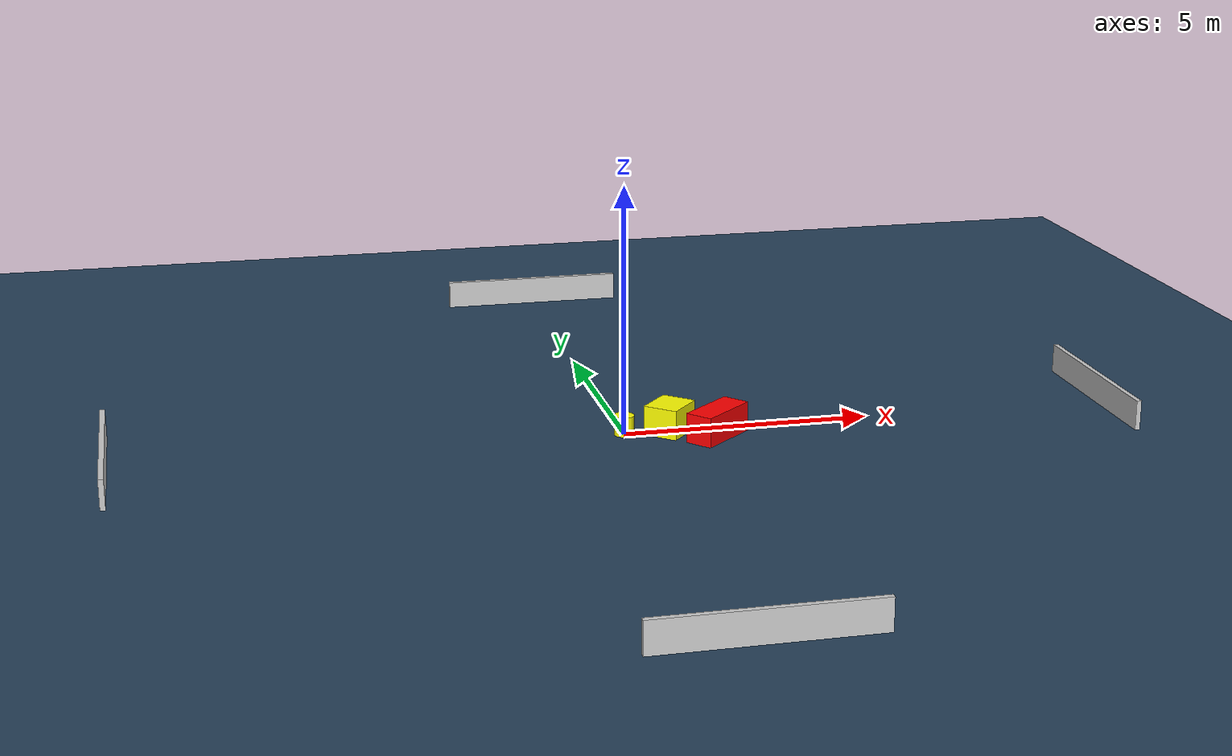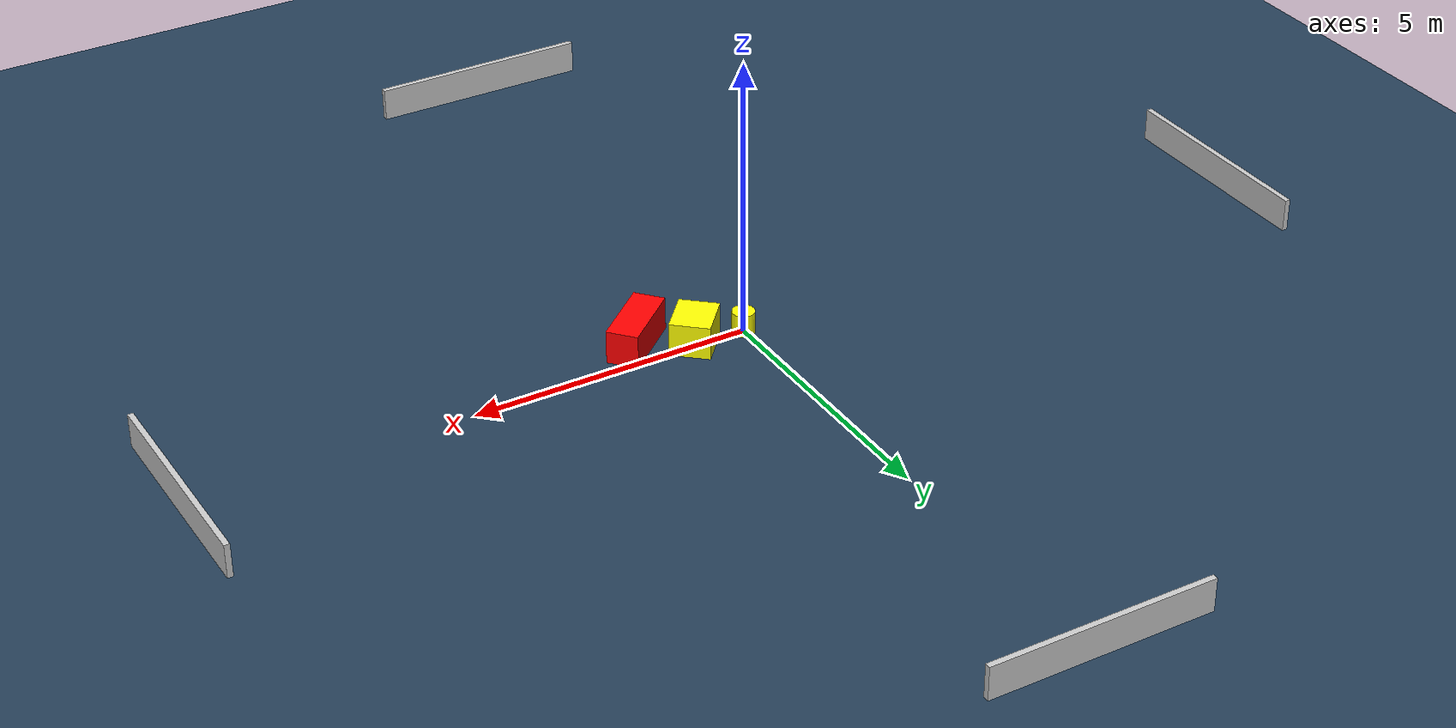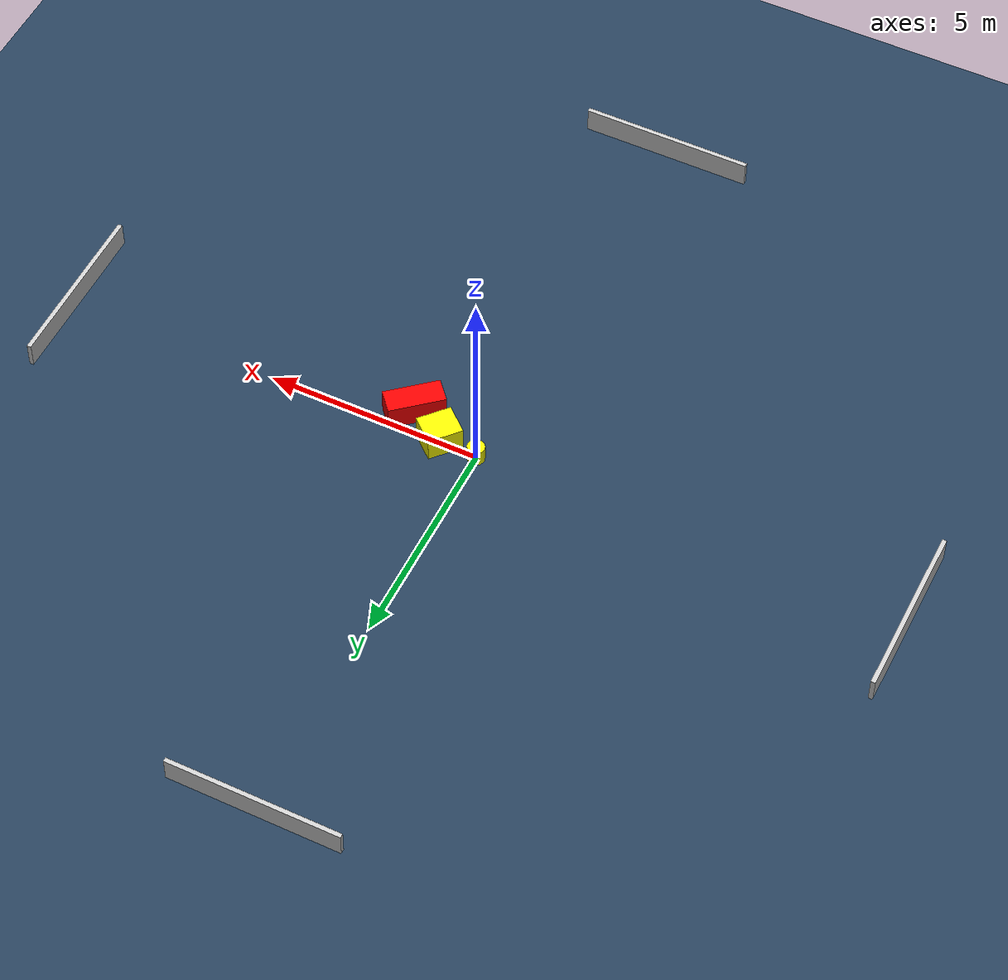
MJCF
<?xml version="1.0" ?>
<mujoco model="generated_environment">
  <option timestep="0.01" integrator="RK4" cone="elliptic"/>
  <default>
    <geom density="1"/>
  </default>
  <asset>
    <texture builtin="gradient" height="3072" name="skybox" rgb1="0.3 0.5 0.7" rgb2="0 0 0" type="skybox" width="512"/>
    <texture builtin="checker" height="300" name="groundplane" rgb1="0.2 0.3 0.4" rgb2="0.1 0.2 0.3" type="2d" width="300"/>
    <material name="groundplane" reflectance="0.2" texrepeat="5 5" texture="groundplane"/>
  </asset>
  <worldbody>
    <light dir="0 0 -1" directional="true" pos="0 0 1.5"/>
    <geom condim="3" friction="0.5 0.005 0.001" material="groundplane" name="floor" pos="0 0 0" size="0 0 0.05" type="plane"/>
    <body name="walls">
      <geom name="wall_1" condim="4" pos="-10.0 0.0 0.3" rgba="0.800000011920929 0.800000011920929 0.800000011920929 1.0" size="0.05 2.0 0.3" type="box"/>
      <geom name="wall_2" condim="4" pos="10.0 0.0 0.3" rgba="0.800000011920929 0.800000011920929 0.800000011920929 1.0" size="0.05 2.0 0.3" type="box"/>
      <geom name="wall_3" condim="4" pos="0.0 -10.0 0.3" rgba="0.800000011920929 0.800000011920929 0.800000011920929 1.0" size="2.0 0.05 0.3" type="box"/>
      <geom name="wall_4" condim="4" pos="0.0 10.0 0.3" rgba="0.800000011920929 0.800000011920929 0.800000011920929 1.0" size="2.0 0.05 0.3" type="box"/>
    </body>
    <body name="robot">
      <joint name="joint_x" type="slide" pos="0 0 0" axis="1 0 0"/>
      <joint name="joint_y" type="slide" pos="0 0 0" axis="0 1 0"/>
      <geom name="robot" type="cylinder" pos="0.0 0.0 0.2" size="0.2 0.2 0.0" mass="5.0" friction="1.0 0.005 0.0001" condim="4" rgba="1.0 1.0 0.0 1.0"/>
    </body>
    <body name="obstacle_1_movable">
      <geom name="obstacle_1_movable" condim="4" pos="0.9102161172094982 -0.056020723807089466 0.3" euler="0 0 228.52388979776904" friction="0.0 0.005 0.001" rgba="1.0 1.0 0.0 1.0" size="0.40871010340908953 0.3529217487287011 0.3" type="box" mass="0.1"/>
      <joint type="free"/>
    </body>
    <body name="obstacle_2_static">
      <geom name="obstacle_2_static" condim="4" pos="1.7614770030629852 -0.5286525151424266 0.3" euler="0 0 130.77440105983015" friction="0.0 0.005 0.001" rgba="1.0 0.0 0.0 1.0" size="0.28120588241549005 0.6557454340284272 0.3" type="box"/>
    </body>
  </worldbody>
  <actuator>
    <motor name="actuator_x" joint="joint_x" gear="1" ctrlrange="-1 1"/>
    <motor name="actuator_y" joint="joint_y" gear="1" ctrlrange="-1 1"/>
  </actuator>
</mujoco>
